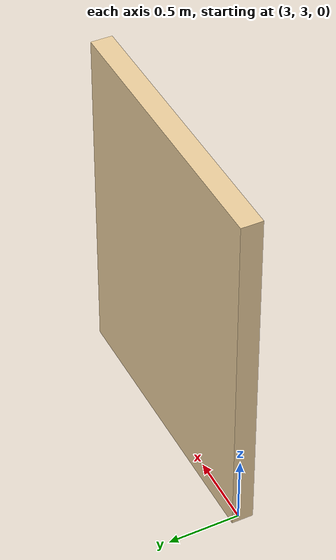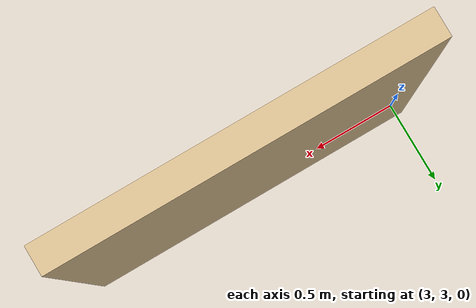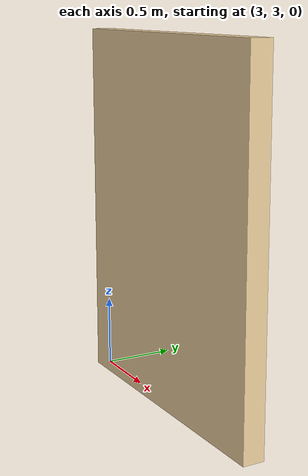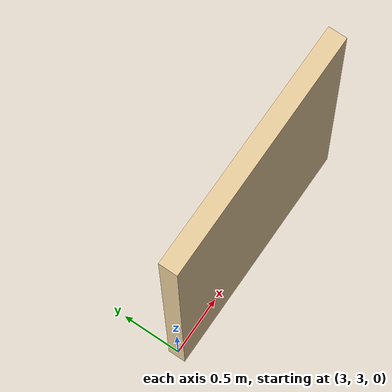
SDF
<?xml version='1.0'?>
<sdf version='1.6'>
  <model name='wall'>
    <pose frame=''>3.965 2.99 0 0 -0 0</pose>
    <link name='Wall_0'>
      <collision name='Wall_0_Collision'>
        <geometry>
          <box>
            <size>2 0.15 2.5</size>
          </box>
        </geometry>
        <pose frame=''>0 0 1.25 0 -0 0</pose>
      </collision>
      <visual name='Wall_0_Visual'>
        <pose frame=''>0 0 1.25 0 -0 0</pose>
        <geometry>
          <box>
            <size>2 0.15 2.5</size>
          </box>
        </geometry>
        <material>
          <script>
            <uri>file://media/materials/scripts/gazebo.material</uri>
            <name>Gazebo/Grey</name>
          </script>
          <ambient>0.921569 0.807843 0.615686 1</ambient>
        </material>
        <meta>
          <layer>0</layer>
        </meta>
      </visual>
      <pose frame=''>-0 0 0 0 -0 0</pose>
    </link>
    <static>1</static>
  </model>
</sdf>
